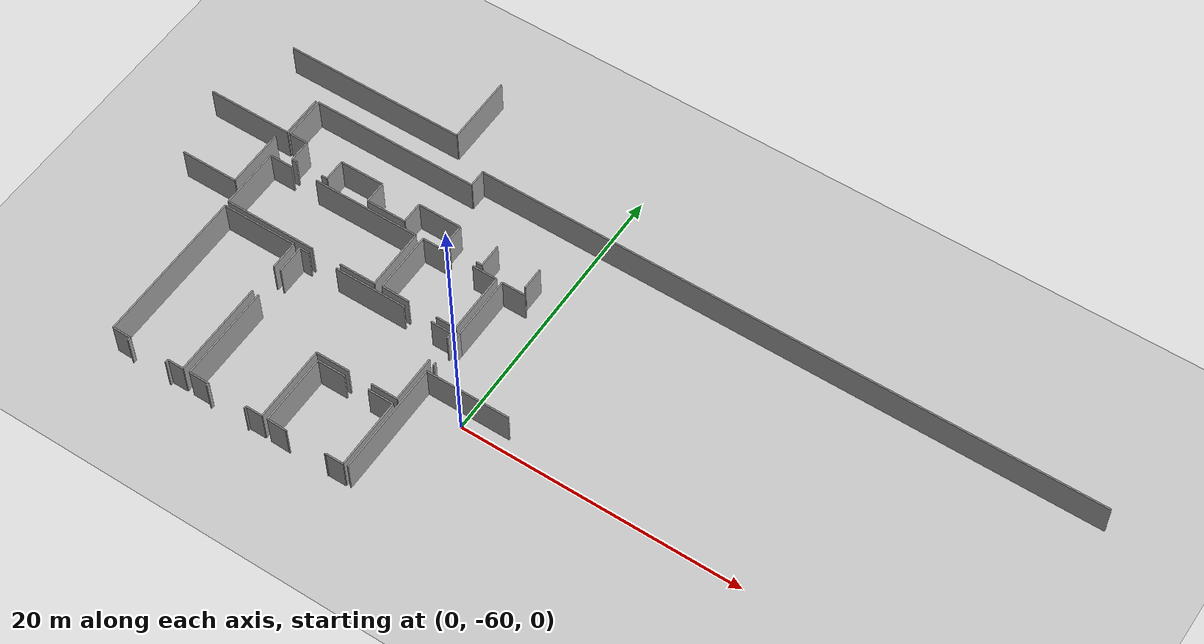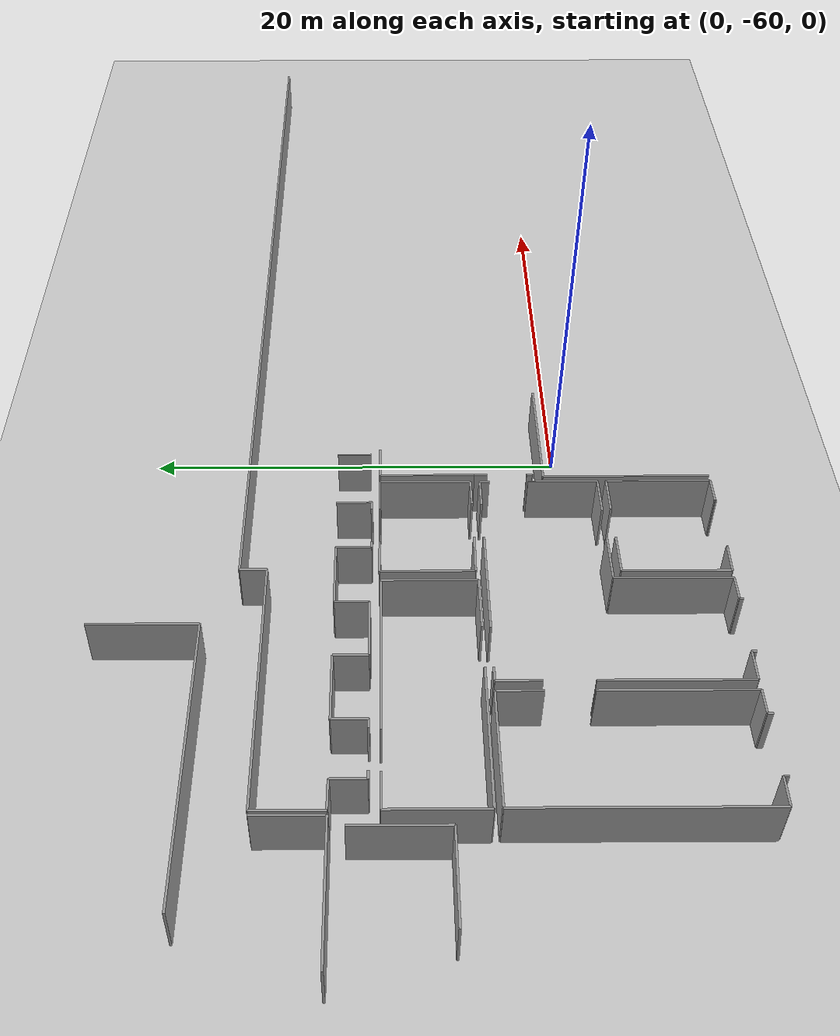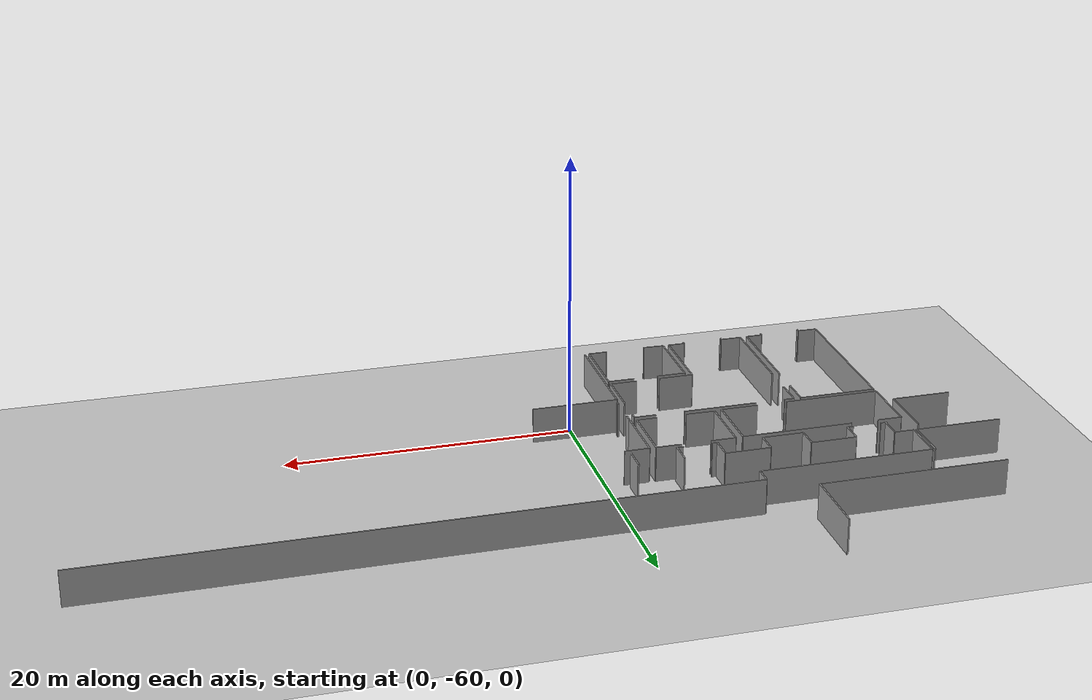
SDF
<sdf version="1.6">
 <world name="default">
  <model name="ground_plane">
   <static>1</static>
   <link name="link">
    <collision name="collision">
     <geometry><plane><normal>0 0 1</normal><size>100 100</size></plane></geometry>
     <surface><friction><ode><mu>100</mu><mu2>50</mu2></ode></friction></surface>
    </collision>
    <visual name="visual">
     <cast_shadows>0</cast_shadows>
     <geometry><plane><normal>0 0 1</normal><size>100 100</size></plane></geometry>
     <material>
      <script><uri>file://media/materials/scripts/gazebo.material</uri><name>Gazebo/Grey</name></script>
     </material>
    </visual>
   </link>
  </model>
  <model name="50036894">
   <static>1</static>
   <link name="Wall_186">
    <collision name="Wall_186_Collision">
     <geometry><box><size>3.04978792739 0.1 2.5</size></box></geometry>
     <pose>1.5248939637 0 1.25 0 0 0</pose>
    </collision>
    <visual name="Wall_186_Visual">
     <pose>1.5248939637 0 1.25 0 0 0</pose>
     <geometry><box><size>3.04978792739 0.1 2.5</size></box></geometry>
     <material>
      <script><uri>file://media/materials/scripts/gazebo.material</uri><name>Gazebo/Grey</name></script>
      <ambient>1 1 1 1</ambient>
     </material>
    </visual>
    <pose>101.698229241 -113.497961694 0 0 0 -1.57079632679</pose>
   </link>
   <link name="Wall_187">
    <collision name="Wall_187_Collision">
     <geometry><box><size>6.07801989488 0.1 2.5</size></box></geometry>
     <pose>3.03900994744 0 1.25 0 0 0</pose>
    </collision>
    <visual name="Wall_187_Visual">
     <pose>3.03900994744 0 1.25 0 0 0</pose>
     <geometry><box><size>6.07801989488 0.1 2.5</size></box></geometry>
     <material>
      <script><uri>file://media/materials/scripts/gazebo.material</uri><name>Gazebo/Grey</name></script>
      <ambient>1 1 1 1</ambient>
     </material>
    </visual>
    <pose>101.698229241 -116.547749621 0 0 0 3.14159265359</pose>
   </link>
   <link name="Wall_208">
    <collision name="Wall_208_Collision">
     <geometry><box><size>4.21938895194 0.1 2.5</size></box></geometry>
     <pose>2.10969447597 0 1.25 0 0 0</pose>
    </collision>
    <visual name="Wall_208_Visual">
     <pose>2.10969447597 0 1.25 0 0 0</pose>
     <geometry><box><size>4.21938895194 0.1 2.5</size></box></geometry>
     <material>
      <script><uri>file://media/materials/scripts/gazebo.material</uri><name>Gazebo/Grey</name></script>
      <ambient>1 1 1 1</ambient>
     </material>
    </visual>
    <pose>101.260516455 -117.229425153 0 0 0 -1.57079632679</pose>
   </link>
   <link name="Wall_209">
    <collision name="Wall_209_Collision">
     <geometry><box><size>4.1034939675 0.1 2.5</size></box></geometry>
     <pose>2.05174698375 0 1.25 0 0 0</pose>
    </collision>
    <visual name="Wall_209_Visual">
     <pose>2.05174698375 0 1.25 0 0 0</pose>
     <geometry><box><size>4.1034939675 0.1 2.5</size></box></geometry>
     <material>
      <script><uri>file://media/materials/scripts/gazebo.material</uri><name>Gazebo/Grey</name></script>
      <ambient>1 1 1 1</ambient>
     </material>
    </visual>
    <pose>101.260516455 -121.448814105 0 0 0 3.14159265359</pose>
   </link>
   <link name="Wall_223">
    <collision name="Wall_223_Collision">
     <geometry><box><size>4.986020326 0.1 2.5</size></box></geometry>
     <pose>2.493010163 0 1.25 0 0 0</pose>
    </collision>
    <visual name="Wall_223_Visual">
     <pose>2.493010163 0 1.25 0 0 0</pose>
     <geometry><box><size>4.986020326 0.1 2.5</size></box></geometry>
     <material>
      <script><uri>file://media/materials/scripts/gazebo.material</uri><name>Gazebo/Grey</name></script>
      <ambient>1 1 1 1</ambient>
     </material>
    </visual>
    <pose>110.900088126 -105.781181647 0 0 0 -1.57079632679</pose>
   </link>
   <link name="Wall_224">
    <collision name="Wall_224_Collision">
     <geometry><box><size>13.1202251964 0.1 2.5</size></box></geometry>
     <pose>6.56011259819 0 1.25 0 0 0</pose>
    </collision>
    <visual name="Wall_224_Visual">
     <pose>6.56011259819 0 1.25 0 0 0</pose>
     <geometry><box><size>13.1202251964 0.1 2.5</size></box></geometry>
     <material>
      <script><uri>file://media/materials/scripts/gazebo.material</uri><name>Gazebo/Grey</name></script>
      <ambient>1 1 1 1</ambient>
     </material>
    </visual>
    <pose>110.900088126 -110.767201973 0 0 0 3.14159265359</pose>
   </link>
   <link name="Wall_226">
    <collision name="Wall_226_Collision">
     <geometry><box><size>4.36470148166 0.1 2.5</size></box></geometry>
     <pose>2.18235074083 0 1.25 0 0 0</pose>
    </collision>
    <visual name="Wall_226_Visual">
     <pose>2.18235074083 0 1.25 0 0 0</pose>
     <geometry><box><size>4.36470148166 0.1 2.5</size></box></geometry>
     <material>
      <script><uri>file://media/materials/scripts/gazebo.material</uri><name>Gazebo/Grey</name></script>
      <ambient>1 1 1 1</ambient>
     </material>
    </visual>
    <pose>101.93001921 -122.974215268 0 0 0 1.57079632679</pose>
   </link>
   <link name="Wall_227">
    <collision name="Wall_227_Collision">
     <geometry><box><size>1.6826328703 0.1 2.5</size></box></geometry>
     <pose>0.841316435151 0 1.25 0 0 0</pose>
    </collision>
    <visual name="Wall_227_Visual">
     <pose>0.841316435151 0 1.25 0 0 0</pose>
     <geometry><box><size>1.6826328703 0.1 2.5</size></box></geometry>
     <material>
      <script><uri>file://media/materials/scripts/gazebo.material</uri><name>Gazebo/Grey</name></script>
      <ambient>1 1 1 1</ambient>
     </material>
    </visual>
    <pose>101.93001921 -118.609513786 0 0 0 0.0</pose>
   </link>
   <link name="Wall_228">
    <collision name="Wall_228_Collision">
     <geometry><box><size>7.76420315858 0.1 2.5</size></box></geometry>
     <pose>3.88210157929 0 1.25 0 0 0</pose>
    </collision>
    <visual name="Wall_228_Visual">
     <pose>3.88210157929 0 1.25 0 0 0</pose>
     <geometry><box><size>7.76420315858 0.1 2.5</size></box></geometry>
     <material>
      <script><uri>file://media/materials/scripts/gazebo.material</uri><name>Gazebo/Grey</name></script>
      <ambient>1 1 1 1</ambient>
     </material>
    </visual>
    <pose>105.530878913 -118.609513786 0 0 0 0.0</pose>
   </link>
   <link name="Wall_229">
    <collision name="Wall_229_Collision">
     <geometry><box><size>4.37636705996 0.1 2.5</size></box></geometry>
     <pose>2.18818352998 0 1.25 0 0 0</pose>
    </collision>
    <visual name="Wall_229_Visual">
     <pose>2.18818352998 0 1.25 0 0 0</pose>
     <geometry><box><size>4.37636705996 0.1 2.5</size></box></geometry>
     <material>
      <script><uri>file://media/materials/scripts/gazebo.material</uri><name>Gazebo/Grey</name></script>
      <ambient>1 1 1 1</ambient>
     </material>
    </visual>
    <pose>113.295082071 -118.609513786 0 0 0 -1.57079632679</pose>
   </link>
   <link name="Wall_230">
    <collision name="Wall_230_Collision">
     <geometry><box><size>2.60979274579 0.1 2.5</size></box></geometry>
     <pose>1.30489637289 0 1.25 0 0 0</pose>
    </collision>
    <visual name="Wall_230_Visual">
     <pose>1.30489637289 0 1.25 0 0 0</pose>
     <geometry><box><size>2.60979274579 0.1 2.5</size></box></geometry>
     <material>
      <script><uri>file://media/materials/scripts/gazebo.material</uri><name>Gazebo/Grey</name></script>
      <ambient>1 1 1 1</ambient>
     </material>
    </visual>
    <pose>113.295082071 -122.985880846 0 0 0 3.14159265359</pose>
   </link>
   <link name="Wall_231">
    <collision name="Wall_231_Collision">
     <geometry><box><size>6.62149396011 0.1 2.5</size></box></geometry>
     <pose>3.31074698005 0 1.25 0 0 0</pose>
    </collision>
    <visual name="Wall_231_Visual">
     <pose>3.31074698005 0 1.25 0 0 0</pose>
     <geometry><box><size>6.62149396011 0.1 2.5</size></box></geometry>
     <material>
      <script><uri>file://media/materials/scripts/gazebo.material</uri><name>Gazebo/Grey</name></script>
      <ambient>1 1 1 1</ambient>
     </material>
    </visual>
    <pose>108.551502894 -122.985880846 0 0 0 3.13983087832</pose>
   </link>
   <link name="Wall_232">
    <collision name="Wall_232_Collision">
     <geometry><box><size>6.75690583216 0.1 2.5</size></box></geometry>
     <pose>3.37845291608 0 1.25 0 0 0</pose>
    </collision>
    <visual name="Wall_232_Visual">
     <pose>3.37845291608 0 1.25 0 0 0</pose>
     <geometry><box><size>6.75690583216 0.1 2.5</size></box></geometry>
     <material>
      <script><uri>file://media/materials/scripts/gazebo.material</uri><name>Gazebo/Grey</name></script>
      <ambient>1 1 1 1</ambient>
     </material>
    </visual>
    <pose>107.872363357 -134.368188475 0 0 0 1.57079632679</pose>
   </link>
   <link name="Wall_233">
    <collision name="Wall_233_Collision">
     <geometry><box><size>2.02473863399 0.1 2.5</size></box></geometry>
     <pose>1.01236931699 0 1.25 0 0 0</pose>
    </collision>
    <visual name="Wall_233_Visual">
     <pose>1.01236931699 0 1.25 0 0 0</pose>
     <geometry><box><size>2.02473863399 0.1 2.5</size></box></geometry>
     <material>
      <script><uri>file://media/materials/scripts/gazebo.material</uri><name>Gazebo/Grey</name></script>
      <ambient>1 1 1 1</ambient>
     </material>
    </visual>
    <pose>107.872363357 -125.385185984 0 0 0 1.57079632679</pose>
   </link>
   <link name="Wall_234">
    <collision name="Wall_234_Collision">
     <geometry><box><size>0.690297916046 0.1 2.5</size></box></geometry>
     <pose>0.345148958023 0 1.25 0 0 0</pose>
    </collision>
    <visual name="Wall_234_Visual">
     <pose>0.345148958023 0 1.25 0 0 0</pose>
     <geometry><box><size>0.690297916046 0.1 2.5</size></box></geometry>
     <material>
      <script><uri>file://media/materials/scripts/gazebo.material</uri><name>Gazebo/Grey</name></script>
      <ambient>1 1 1 1</ambient>
     </material>
    </visual>
    <pose>107.872363357 -123.36044735 0 0 0 0.0</pose>
   </link>
   <link name="Wall_235">
    <collision name="Wall_235_Collision">
     <geometry><box><size>5.16937278497 0.1 2.5</size></box></geometry>
     <pose>2.58468639248 0 1.25 0 0 0</pose>
    </collision>
    <visual name="Wall_235_Visual">
     <pose>2.58468639248 0 1.25 0 0 0</pose>
     <geometry><box><size>5.16937278497 0.1 2.5</size></box></geometry>
     <material>
      <script><uri>file://media/materials/scripts/gazebo.material</uri><name>Gazebo/Grey</name></script>
      <ambient>1 1 1 1</ambient>
     </material>
    </visual>
    <pose>110.648010195 -123.36044735 0 0 0 0.0</pose>
   </link>
   <link name="Wall_236">
    <collision name="Wall_236_Collision">
     <geometry><box><size>1.5114531887 0.1 2.5</size></box></geometry>
     <pose>0.755726594349 0 1.25 0 0 0</pose>
    </collision>
    <visual name="Wall_236_Visual">
     <pose>0.755726594349 0 1.25 0 0 0</pose>
     <geometry><box><size>1.5114531887 0.1 2.5</size></box></geometry>
     <material>
      <script><uri>file://media/materials/scripts/gazebo.material</uri><name>Gazebo/Grey</name></script>
      <ambient>1 1 1 1</ambient>
     </material>
    </visual>
    <pose>117.873821555 -123.36044735 0 0 0 0.0</pose>
   </link>
   <link name="Wall_237">
    <collision name="Wall_237_Collision">
     <geometry><box><size>0.45622555142 0.1 2.5</size></box></geometry>
     <pose>0.22811277571 0 1.25 0 0 0</pose>
    </collision>
    <visual name="Wall_237_Visual">
     <pose>0.22811277571 0 1.25 0 0 0</pose>
     <geometry><box><size>0.45622555142 0.1 2.5</size></box></geometry>
     <material>
      <script><uri>file://media/materials/scripts/gazebo.material</uri><name>Gazebo/Grey</name></script>
      <ambient>1 1 1 1</ambient>
     </material>
    </visual>
    <pose>119.385274743 -123.36044735 0 0 0 -1.57079632679</pose>
   </link>
   <link name="Wall_238">
    <collision name="Wall_238_Collision">
     <geometry><box><size>3.3437097807 0.1 2.5</size></box></geometry>
     <pose>1.67185489035 0 1.25 0 0 0</pose>
    </collision>
    <visual name="Wall_238_Visual">
     <pose>1.67185489035 0 1.25 0 0 0</pose>
     <geometry><box><size>3.3437097807 0.1 2.5</size></box></geometry>
     <material>
      <script><uri>file://media/materials/scripts/gazebo.material</uri><name>Gazebo/Grey</name></script>
      <ambient>1 1 1 1</ambient>
     </material>
    </visual>
    <pose>119.385274743 -125.668203057 0 0 0 -1.57079632679</pose>
   </link>
   <link name="Wall_239">
    <collision name="Wall_239_Collision">
     <geometry><box><size>1.91214044342 0.1 2.5</size></box></geometry>
     <pose>0.956070221709 0 1.25 0 0 0</pose>
    </collision>
    <visual name="Wall_239_Visual">
     <pose>0.956070221709 0 1.25 0 0 0</pose>
     <geometry><box><size>1.91214044342 0.1 2.5</size></box></geometry>
     <material>
      <script><uri>file://media/materials/scripts/gazebo.material</uri><name>Gazebo/Grey</name></script>
      <ambient>1 1 1 1</ambient>
     </material>
    </visual>
    <pose>119.385274743 -129.011912838 0 0 0 3.14159265359</pose>
   </link>
   <link name="Wall_240">
    <collision name="Wall_240_Collision">
     <geometry><box><size>2.42162189578 0.1 2.5</size></box></geometry>
     <pose>1.21081094789 0 1.25 0 0 0</pose>
    </collision>
    <visual name="Wall_240_Visual">
     <pose>1.21081094789 0 1.25 0 0 0</pose>
     <geometry><box><size>2.42162189578 0.1 2.5</size></box></geometry>
     <material>
      <script><uri>file://media/materials/scripts/gazebo.material</uri><name>Gazebo/Grey</name></script>
      <ambient>1 1 1 1</ambient>
     </material>
    </visual>
    <pose>115.803688605 -129.011912838 0 0 0 3.14159265359</pose>
   </link>
   <link name="Wall_241">
    <collision name="Wall_241_Collision">
     <geometry><box><size>5.40243075148 0.1 2.5</size></box></geometry>
     <pose>2.70121537574 0 1.25 0 0 0</pose>
    </collision>
    <visual name="Wall_241_Visual">
     <pose>2.70121537574 0 1.25 0 0 0</pose>
     <geometry><box><size>5.40243075148 0.1 2.5</size></box></geometry>
     <material>
      <script><uri>file://media/materials/scripts/gazebo.material</uri><name>Gazebo/Grey</name></script>
      <ambient>1 1 1 1</ambient>
     </material>
    </visual>
    <pose>113.382066709 -129.011912838 0 0 0 -1.57079632679</pose>
   </link>
   <link name="Wall_242">
    <collision name="Wall_242_Collision">
     <geometry><box><size>1.19470737784 0.1 2.5</size></box></geometry>
     <pose>0.597353688922 0 1.25 0 0 0</pose>
    </collision>
    <visual name="Wall_242_Visual">
     <pose>0.597353688922 0 1.25 0 0 0</pose>
     <geometry><box><size>1.19470737784 0.1 2.5</size></box></geometry>
     <material>
      <script><uri>file://media/materials/scripts/gazebo.material</uri><name>Gazebo/Grey</name></script>
      <ambient>1 1 1 1</ambient>
     </material>
    </visual>
    <pose>113.382066709 -134.414343589 0 0 0 3.14159265359</pose>
   </link>
   <link name="Wall_243">
    <collision name="Wall_243_Collision">
     <geometry><box><size>0.183606058493 0.1 2.5</size></box></geometry>
     <pose>0.0918030292464 0 1.25 0 0 0</pose>
    </collision>
    <visual name="Wall_243_Visual">
     <pose>0.0918030292464 0 1.25 0 0 0</pose>
     <geometry><box><size>0.183606058493 0.1 2.5</size></box></geometry>
     <material>
      <script><uri>file://media/materials/scripts/gazebo.material</uri><name>Gazebo/Grey</name></script>
      <ambient>1 1 1 1</ambient>
     </material>
    </visual>
    <pose>112.187359332 -134.414343589 0 0 0 -1.57079632679</pose>
   </link>
   <link name="Wall_244">
    <collision name="Wall_244_Collision">
     <geometry><box><size>0.216827596701 0.1 2.5</size></box></geometry>
     <pose>0.10841379835 0 1.25 0 0 0</pose>
    </collision>
    <visual name="Wall_244_Visual">
     <pose>0.10841379835 0 1.25 0 0 0</pose>
     <geometry><box><size>0.216827596701 0.1 2.5</size></box></geometry>
     <material>
      <script><uri>file://media/materials/scripts/gazebo.material</uri><name>Gazebo/Grey</name></script>
      <ambient>1 1 1 1</ambient>
     </material>
    </visual>
    <pose>109.336139835 -134.597949648 0 0 0 1.57079632679</pose>
   </link>
   <link name="Wall_245">
    <collision name="Wall_245_Collision">
     <geometry><box><size>1.46383361524 0.1 2.5</size></box></geometry>
     <pose>0.73191680762 0 1.25 0 0 0</pose>
    </collision>
    <visual name="Wall_245_Visual">
     <pose>0.73191680762 0 1.25 0 0 0</pose>
     <geometry><box><size>1.46383361524 0.1 2.5</size></box></geometry>
     <material>
      <script><uri>file://media/materials/scripts/gazebo.material</uri><name>Gazebo/Grey</name></script>
      <ambient>1 1 1 1</ambient>
     </material>
    </visual>
    <pose>109.336139835 -134.381122051 0 0 0 3.13275712468</pose>
   </link>
   <link name="Wall_246">
    <collision name="Wall_246_Collision">
     <geometry><box><size>11.0480634506 0.1 2.5</size></box></geometry>
     <pose>5.5240317253 0 1.25 0 0 0</pose>
    </collision>
    <visual name="Wall_246_Visual">
     <pose>5.5240317253 0 1.25 0 0 0</pose>
     <geometry><box><size>11.0480634506 0.1 2.5</size></box></geometry>
     <material>
      <script><uri>file://media/materials/scripts/gazebo.material</uri><name>Gazebo/Grey</name></script>
      <ambient>1 1 1 1</ambient>
     </material>
    </visual>
    <pose>101.96755194 -134.379600454 0 0 0 1.57079632679</pose>
   </link>
   <link name="Wall_247">
    <collision name="Wall_247_Collision">
     <geometry><box><size>5.40243075148 0.1 2.5</size></box></geometry>
     <pose>2.70121537574 0 1.25 0 0 0</pose>
    </collision>
    <visual name="Wall_247_Visual">
     <pose>2.70121537574 0 1.25 0 0 0</pose>
     <geometry><box><size>5.40243075148 0.1 2.5</size></box></geometry>
     <material>
      <script><uri>file://media/materials/scripts/gazebo.material</uri><name>Gazebo/Grey</name></script>
      <ambient>1 1 1 1</ambient>
     </material>
    </visual>
    <pose>101.96755194 -123.331537003 0 0 0 0.0</pose>
   </link>
   <link name="Wall_248">
    <collision name="Wall_248_Collision">
     <geometry><box><size>2.07393694248 0.1 2.5</size></box></geometry>
     <pose>1.03696847124 0 1.25 0 0 0</pose>
    </collision>
    <visual name="Wall_248_Visual">
     <pose>1.03696847124 0 1.25 0 0 0</pose>
     <geometry><box><size>2.07393694248 0.1 2.5</size></box></geometry>
     <material>
      <script><uri>file://media/materials/scripts/gazebo.material</uri><name>Gazebo/Grey</name></script>
      <ambient>1 1 1 1</ambient>
     </material>
    </visual>
    <pose>107.369982692 -123.331537003 0 0 0 -1.57079632679</pose>
   </link>
   <link name="Wall_249">
    <collision name="Wall_249_Collision">
     <geometry><box><size>6.84921606046 0.1 2.5</size></box></geometry>
     <pose>3.42460803023 0 1.25 0 0 0</pose>
    </collision>
    <visual name="Wall_249_Visual">
     <pose>3.42460803023 0 1.25 0 0 0</pose>
     <geometry><box><size>6.84921606046 0.1 2.5</size></box></geometry>
     <material>
      <script><uri>file://media/materials/scripts/gazebo.material</uri><name>Gazebo/Grey</name></script>
      <ambient>1 1 1 1</ambient>
     </material>
    </visual>
    <pose>107.369982692 -127.533427588 0 0 0 -1.57079632679</pose>
   </link>
   <link name="Wall_250">
    <collision name="Wall_250_Collision">
     <geometry><box><size>1.15996424247 0.1 2.5</size></box></geometry>
     <pose>0.579982121233 0 1.25 0 0 0</pose>
    </collision>
    <visual name="Wall_250_Visual">
     <pose>0.579982121233 0 1.25 0 0 0</pose>
     <geometry><box><size>1.15996424247 0.1 2.5</size></box></geometry>
     <material>
      <script><uri>file://media/materials/scripts/gazebo.material</uri><name>Gazebo/Grey</name></script>
      <ambient>1 1 1 1</ambient>
     </material>
    </visual>
    <pose>107.369982692 -134.382643648 0 0 0 3.14159265359</pose>
   </link>
   <link name="Wall_251">
    <collision name="Wall_251_Collision">
     <geometry><box><size>0.252077931135 0.1 2.5</size></box></geometry>
     <pose>0.126038965568 0 1.25 0 0 0</pose>
    </collision>
    <visual name="Wall_251_Visual">
     <pose>0.126038965568 0 1.25 0 0 0</pose>
     <geometry><box><size>0.252077931135 0.1 2.5</size></box></geometry>
     <material>
      <script><uri>file://media/materials/scripts/gazebo.material</uri><name>Gazebo/Grey</name></script>
      <ambient>1 1 1 1</ambient>
     </material>
    </visual>
    <pose>106.210018449 -134.382643648 0 0 0 -1.57079632679</pose>
   </link>
   <link name="Wall_252">
    <collision name="Wall_252_Collision">
     <geometry><box><size>0.239651554248 0.1 2.5</size></box></geometry>
     <pose>0.119825777124 0 1.25 0 0 0</pose>
    </collision>
    <visual name="Wall_252_Visual">
     <pose>0.119825777124 0 1.25 0 0 0</pose>
     <geometry><box><size>0.239651554248 0.1 2.5</size></box></geometry>
     <material>
      <script><uri>file://media/materials/scripts/gazebo.material</uri><name>Gazebo/Grey</name></script>
      <ambient>1 1 1 1</ambient>
     </material>
    </visual>
    <pose>103.309854244 -134.634721579 0 0 0 1.57079632679</pose>
   </link>
   <link name="Wall_253">
    <collision name="Wall_253_Collision">
     <geometry><box><size>1.3423914411 0.1 2.5</size></box></geometry>
     <pose>0.671195720548 0 1.25 0 0 0</pose>
    </collision>
    <visual name="Wall_253_Visual">
     <pose>0.671195720548 0 1.25 0 0 0</pose>
     <geometry><box><size>1.3423914411 0.1 2.5</size></box></geometry>
     <material>
      <script><uri>file://media/materials/scripts/gazebo.material</uri><name>Gazebo/Grey</name></script>
      <ambient>1 1 1 1</ambient>
     </material>
    </visual>
    <pose>103.309854244 -134.395070025 0 0 0 3.13006850857</pose>
   </link>
   <link name="Wall_254">
    <collision name="Wall_254_Collision">
     <geometry><box><size>4.3104311826 0.1 2.5</size></box></geometry>
     <pose>2.1552155913 0 1.25 0 0 0</pose>
    </collision>
    <visual name="Wall_254_Visual">
     <pose>2.1552155913 0 1.25 0 0 0</pose>
     <geometry><box><size>4.3104311826 0.1 2.5</size></box></geometry>
     <material>
      <script><uri>file://media/materials/scripts/gazebo.material</uri><name>Gazebo/Grey</name></script>
      <ambient>1 1 1 1</ambient>
     </material>
    </visual>
    <pose>113.821554692 -122.875565051 0 0 0 1.57079632679</pose>
   </link>
   <link name="Wall_255">
    <collision name="Wall_255_Collision">
     <geometry><box><size>1.73487437313 0.1 2.5</size></box></geometry>
     <pose>0.867437186567 0 1.25 0 0 0</pose>
    </collision>
    <visual name="Wall_255_Visual">
     <pose>0.867437186567 0 1.25 0 0 0</pose>
     <geometry><box><size>1.73487437313 0.1 2.5</size></box></geometry>
     <material>
      <script><uri>file://media/materials/scripts/gazebo.material</uri><name>Gazebo/Grey</name></script>
      <ambient>1 1 1 1</ambient>
     </material>
    </visual>
    <pose>113.821554692 -118.565133869 0 0 0 0.0</pose>
   </link>
   <link name="Wall_256">
    <collision name="Wall_256_Collision">
     <geometry><box><size>1.76758871228 0.1 2.5</size></box></geometry>
     <pose>0.883794356142 0 1.25 0 0 0</pose>
    </collision>
    <visual name="Wall_256_Visual">
     <pose>0.883794356142 0 1.25 0 0 0</pose>
     <geometry><box><size>1.76758871228 0.1 2.5</size></box></geometry>
     <material>
      <script><uri>file://media/materials/scripts/gazebo.material</uri><name>Gazebo/Grey</name></script>
      <ambient>1 1 1 1</ambient>
     </material>
    </visual>
    <pose>117.60754205 -118.565133869 0 0 0 0.0</pose>
   </link>
   <link name="Wall_257">
    <collision name="Wall_257_Collision">
     <geometry><box><size>4.34644231562 0.1 2.5</size></box></geometry>
     <pose>2.17322115781 0 1.25 0 0 0</pose>
    </collision>
    <visual name="Wall_257_Visual">
     <pose>2.17322115781 0 1.25 0 0 0</pose>
     <geometry><box><size>4.34644231562 0.1 2.5</size></box></geometry>
     <material>
      <script><uri>file://media/materials/scripts/gazebo.material</uri><name>Gazebo/Grey</name></script>
      <ambient>1 1 1 1</ambient>
     </material>
    </visual>
    <pose>119.375130762 -118.565133869 0 0 0 -1.57079632679</pose>
   </link>
   <link name="Wall_258">
    <collision name="Wall_258_Collision">
     <geometry><box><size>1.44551731134 0.1 2.5</size></box></geometry>
     <pose>0.722758655669 0 1.25 0 0 0</pose>
    </collision>
    <visual name="Wall_258_Visual">
     <pose>0.722758655669 0 1.25 0 0 0</pose>
     <geometry><box><size>1.44551731134 0.1 2.5</size></box></geometry>
     <material>
      <script><uri>file://media/materials/scripts/gazebo.material</uri><name>Gazebo/Grey</name></script>
      <ambient>1 1 1 1</ambient>
     </material>
    </visual>
    <pose>119.375130762 -122.911576184 0 0 0 3.14159265359</pose>
   </link>
   <link name="Wall_259">
    <collision name="Wall_259_Collision">
     <geometry><box><size>2.01795918792 0.1 2.5</size></box></geometry>
     <pose>1.00897959396 0 1.25 0 0 0</pose>
    </collision>
    <visual name="Wall_259_Visual">
     <pose>1.00897959396 0 1.25 0 0 0</pose>
     <geometry><box><size>2.01795918792 0.1 2.5</size></box></geometry>
     <material>
      <script><uri>file://media/materials/scripts/gazebo.material</uri><name>Gazebo/Grey</name></script>
      <ambient>1 1 1 1</ambient>
     </material>
    </visual>
    <pose>115.839192539 -122.911576184 0 0 0 3.12374638354</pose>
   </link>
   <link name="Wall_260">
    <collision name="Wall_260_Collision">
     <geometry><box><size>4.99109231657 0.1 2.5</size></box></geometry>
     <pose>2.49554615828 0 1.25 0 0 0</pose>
    </collision>
    <visual name="Wall_260_Visual">
     <pose>2.49554615828 0 1.25 0 0 0</pose>
     <geometry><box><size>4.99109231657 0.1 2.5</size></box></geometry>
     <material>
      <script><uri>file://media/materials/scripts/gazebo.material</uri><name>Gazebo/Grey</name></script>
      <ambient>1 1 1 1</ambient>
     </material>
    </visual>
    <pose>113.802281128 -134.418654781 0 0 0 1.57079632679</pose>
   </link>
   <link name="Wall_261">
    <collision name="Wall_261_Collision">
     <geometry><box><size>2.00267547502 0.1 2.5</size></box></geometry>
     <pose>1.00133773751 0 1.25 0 0 0</pose>
    </collision>
    <visual name="Wall_261_Visual">
     <pose>1.00133773751 0 1.25 0 0 0</pose>
     <geometry><box><size>2.00267547502 0.1 2.5</size></box></geometry>
     <material>
      <script><uri>file://media/materials/scripts/gazebo.material</uri><name>Gazebo/Grey</name></script>
      <ambient>1 1 1 1</ambient>
     </material>
    </visual>
    <pose>113.802281128 -129.427562465 0 0 0 0.0</pose>
   </link>
   <link name="Wall_262">
    <collision name="Wall_262_Collision">
     <geometry><box><size>1.85508054955 0.1 2.5</size></box></geometry>
     <pose>0.927540274775 0 1.25 0 0 0</pose>
    </collision>
    <visual name="Wall_262_Visual">
     <pose>0.927540274775 0 1.25 0 0 0</pose>
     <geometry><box><size>1.85508054955 0.1 2.5</size></box></geometry>
     <material>
      <script><uri>file://media/materials/scripts/gazebo.material</uri><name>Gazebo/Grey</name></script>
      <ambient>1 1 1 1</ambient>
     </material>
    </visual>
    <pose>117.558090142 -129.427562465 0 0 0 0.0</pose>
   </link>
   <link name="Wall_263">
    <collision name="Wall_263_Collision">
     <geometry><box><size>5.00351869346 0.1 2.5</size></box></geometry>
     <pose>2.50175934673 0 1.25 0 0 0</pose>
    </collision>
    <visual name="Wall_263_Visual">
     <pose>2.50175934673 0 1.25 0 0 0</pose>
     <geometry><box><size>5.00351869346 0.1 2.5</size></box></geometry>
     <material>
      <script><uri>file://media/materials/scripts/gazebo.material</uri><name>Gazebo/Grey</name></script>
      <ambient>1 1 1 1</ambient>
     </material>
    </visual>
    <pose>119.413170692 -129.427562465 0 0 0 -1.57079632679</pose>
   </link>
   <link name="Wall_264">
    <collision name="Wall_264_Collision">
     <geometry><box><size>1.29842958492 0.1 2.5</size></box></geometry>
     <pose>0.64921479246 0 1.25 0 0 0</pose>
    </collision>
    <visual name="Wall_264_Visual">
     <pose>0.64921479246 0 1.25 0 0 0</pose>
     <geometry><box><size>1.29842958492 0.1 2.5</size></box></geometry>
     <material>
      <script><uri>file://media/materials/scripts/gazebo.material</uri><name>Gazebo/Grey</name></script>
      <ambient>1 1 1 1</ambient>
     </material>
    </visual>
    <pose>119.413170692 -134.431081158 0 0 0 3.14159265359</pose>
   </link>
   <link name="Wall_265">
    <collision name="Wall_265_Collision">
     <geometry><box><size>0.0710078679253 0.1 2.5</size></box></geometry>
     <pose>0.0355039339627 0 1.25 0 0 0</pose>
    </collision>
    <visual name="Wall_265_Visual">
     <pose>0.0355039339627 0 1.25 0 0 0</pose>
     <geometry><box><size>0.0710078679253 0.1 2.5</size></box></geometry>
     <material>
      <script><uri>file://media/materials/scripts/gazebo.material</uri><name>Gazebo/Grey</name></script>
      <ambient>1 1 1 1</ambient>
     </material>
    </visual>
    <pose>118.114741107 -134.431081158 0 0 0 -1.57079632679</pose>
   </link>
   <link name="Wall_266">
    <collision name="Wall_266_Collision">
     <geometry><box><size>0.0497055075477 0.1 2.5</size></box></geometry>
     <pose>0.0248527537739 0 1.25 0 0 0</pose>
    </collision>
    <visual name="Wall_266_Visual">
     <pose>0.0248527537739 0 1.25 0 0 0</pose>
     <geometry><box><size>0.0497055075477 0.1 2.5</size></box></geometry>
     <material>
      <script><uri>file://media/materials/scripts/gazebo.material</uri><name>Gazebo/Grey</name></script>
      <ambient>1 1 1 1</ambient>
     </material>
    </visual>
    <pose>115.229539273 -134.502089026 0 0 0 1.57079632679</pose>
   </link>
   <link name="Wall_267">
    <collision name="Wall_267_Collision">
     <geometry><box><size>1.42765662575 0.1 2.5</size></box></geometry>
     <pose>0.713828312874 0 1.25 0 0 0</pose>
    </collision>
    <visual name="Wall_267_Visual">
     <pose>0.713828312874 0 1.25 0 0 0</pose>
     <geometry><box><size>1.42765662575 0.1 2.5</size></box></geometry>
     <material>
      <script><uri>file://media/materials/scripts/gazebo.material</uri><name>Gazebo/Grey</name></script>
      <ambient>1 1 1 1</ambient>
     </material>
    </visual>
    <pose>115.229539273 -134.452383519 0 0 0 3.1179652105</pose>
   </link>
   <link name="Wall_268">
    <collision name="Wall_268_Collision">
     <geometry><box><size>4.5353739642 0.1 2.5</size></box></geometry>
     <pose>2.2676869821 0 1.25 0 0 0</pose>
    </collision>
    <visual name="Wall_268_Visual">
     <pose>2.2676869821 0 1.25 0 0 0</pose>
     <geometry><box><size>4.5353739642 0.1 2.5</size></box></geometry>
     <material>
      <script><uri>file://media/materials/scripts/gazebo.material</uri><name>Gazebo/Grey</name></script>
      <ambient>1 1 1 1</ambient>
     </material>
    </visual>
    <pose>119.826537923 -123.122317392 0 0 0 1.57079632679</pose>
   </link>
   <link name="Wall_269">
    <collision name="Wall_269_Collision">
     <geometry><box><size>1.72701278776 0.1 2.5</size></box></geometry>
     <pose>0.863506393878 0 1.25 0 0 0</pose>
    </collision>
    <visual name="Wall_269_Visual">
     <pose>0.863506393878 0 1.25 0 0 0</pose>
     <geometry><box><size>1.72701278776 0.1 2.5</size></box></geometry>
     <material>
      <script><uri>file://media/materials/scripts/gazebo.material</uri><name>Gazebo/Grey</name></script>
      <ambient>1 1 1 1</ambient>
     </material>
    </visual>
    <pose>119.826537923 -118.586943428 0 0 0 0.0</pose>
   </link>
   <link name="Wall_274">
    <collision name="Wall_274_Collision">
     <geometry><box><size>0.050719905661 0.1 2.5</size></box></geometry>
     <pose>0.0253599528305 0 1.25 0 0 0</pose>
    </collision>
    <visual name="Wall_274_Visual">
     <pose>0.0253599528305 0 1.25 0 0 0</pose>
     <geometry><box><size>0.050719905661 0.1 2.5</size></box></geometry>
     <material>
      <script><uri>file://media/materials/scripts/gazebo.material</uri><name>Gazebo/Grey</name></script>
      <ambient>1 1 1 1</ambient>
     </material>
    </visual>
    <pose>119.874721833 -125.910390607 0 0 0 3.14159265359</pose>
   </link>
   <link name="Wall_275">
    <collision name="Wall_275_Collision">
     <geometry><box><size>0.266786703777 0.1 2.5</size></box></geometry>
     <pose>0.133393351888 0 1.25 0 0 0</pose>
    </collision>
    <visual name="Wall_275_Visual">
     <pose>0.133393351888 0 1.25 0 0 0</pose>
     <geometry><box><size>0.266786703777 0.1 2.5</size></box></geometry>
     <material>
      <script><uri>file://media/materials/scripts/gazebo.material</uri><name>Gazebo/Grey</name></script>
      <ambient>1 1 1 1</ambient>
     </material>
    </visual>
    <pose>119.824001927 -125.910390607 0 0 0 1.57079632679</pose>
   </link>
   <link name="Wall_276">
    <collision name="Wall_276_Collision">
     <geometry><box><size>0.617520058783 0.1 2.5</size></box></geometry>
     <pose>0.308760029391 0 1.25 0 0 0</pose>
    </collision>
    <visual name="Wall_276_Visual">
     <pose>0.308760029391 0 1.25 0 0 0</pose>
     <geometry><box><size>0.617520058783 0.1 2.5</size></box></geometry>
     <material>
      <script><uri>file://media/materials/scripts/gazebo.material</uri><name>Gazebo/Grey</name></script>
      <ambient>1 1 1 1</ambient>
     </material>
    </visual>
    <pose>119.824001927 -123.739832244 0 0 0 1.5666895737</pose>
   </link>
   <link name="Wall_277">
    <collision name="Wall_277_Collision">
     <geometry><box><size>7.98711714396 0.1 2.5</size></box></geometry>
     <pose>3.99355857198 0 1.25 0 0 0</pose>
    </collision>
    <visual name="Wall_277_Visual">
     <pose>3.99355857198 0 1.25 0 0 0</pose>
     <geometry><box><size>7.98711714396 0.1 2.5</size></box></geometry>
     <material>
      <script><uri>file://media/materials/scripts/gazebo.material</uri><name>Gazebo/Grey</name></script>
      <ambient>1 1 1 1</ambient>
     </material>
    </visual>
    <pose>119.725098111 -134.414343589 0 0 0 1.57079632679</pose>
   </link>
   <link name="Wall_278">
    <collision name="Wall_278_Collision">
     <geometry><box><size>5.984948868 0.1 2.5</size></box></geometry>
     <pose>2.992474434 0 1.25 0 0 0</pose>
    </collision>
    <visual name="Wall_278_Visual">
     <pose>2.992474434 0 1.25 0 0 0</pose>
     <geometry><box><size>5.984948868 0.1 2.5</size></box></geometry>
     <material>
      <script><uri>file://media/materials/scripts/gazebo.material</uri><name>Gazebo/Grey</name></script>
      <ambient>1 1 1 1</ambient>
     </material>
    </visual>
    <pose>119.725098111 -126.427226445 0 0 0 0.0</pose>
   </link>
   <link name="Wall_318">
    <collision name="Wall_318_Collision">
     <geometry><box><size>3.04496953636 0.1 2.5</size></box></geometry>
     <pose>1.52248476818 0 1.25 0 0 0</pose>
    </collision>
    <visual name="Wall_318_Visual">
     <pose>1.52248476818 0 1.25 0 0 0</pose>
     <geometry><box><size>3.04496953636 0.1 2.5</size></box></geometry>
     <material>
      <script><uri>file://media/materials/scripts/gazebo.material</uri><name>Gazebo/Grey</name></script>
      <ambient>1 1 1 1</ambient>
     </material>
    </visual>
    <pose>101.904659257 -116.532787249 0 0 0 1.57079632679</pose>
   </link>
   <link name="Wall_319">
    <collision name="Wall_319_Collision">
     <geometry><box><size>12.0502887865 0.1 2.5</size></box></geometry>
     <pose>6.02514439323 0 1.25 0 0 0</pose>
    </collision>
    <visual name="Wall_319_Visual">
     <pose>6.02514439323 0 1.25 0 0 0</pose>
     <geometry><box><size>12.0502887865 0.1 2.5</size></box></geometry>
     <material>
      <script><uri>file://media/materials/scripts/gazebo.material</uri><name>Gazebo/Grey</name></script>
      <ambient>1 1 1 1</ambient>
     </material>
    </visual>
    <pose>101.904659257 -113.487817713 0 0 0 0.0</pose>
   </link>
   <link name="Wall_320">
    <collision name="Wall_320_Collision">
     <geometry><box><size>1.2337617052 0.1 2.5</size></box></geometry>
     <pose>0.616880852602 0 1.25 0 0 0</pose>
    </collision>
    <visual name="Wall_320_Visual">
     <pose>0.616880852602 0 1.25 0 0 0</pose>
     <geometry><box><size>1.2337617052 0.1 2.5</size></box></geometry>
     <material>
      <script><uri>file://media/materials/scripts/gazebo.material</uri><name>Gazebo/Grey</name></script>
      <ambient>1 1 1 1</ambient>
     </material>
    </visual>
    <pose>113.954948044 -113.487817713 0 0 0 1.57079632679</pose>
   </link>
   <link name="Wall_321">
    <collision name="Wall_321_Collision">
     <geometry><box><size>44.6038458368 0.1 2.5</size></box></geometry>
     <pose>22.3019229184 0 1.25 0 0 0</pose>
    </collision>
    <visual name="Wall_321_Visual">
     <pose>22.3019229184 0 1.25 0 0 0</pose>
     <geometry><box><size>44.6038458368 0.1 2.5</size></box></geometry>
     <material>
      <script><uri>file://media/materials/scripts/gazebo.material</uri><name>Gazebo/Grey</name></script>
      <ambient>1 1 1 1</ambient>
     </material>
    </visual>
    <pose>113.954948044 -112.254056007 0 0 0 0.0</pose>
   </link>
   <link name="Wall_354">
    <collision name="Wall_354_Collision">
     <geometry><box><size>1.61086420379 0.1 2.5</size></box></geometry>
     <pose>0.805432101896 0 1.25 0 0 0</pose>
    </collision>
    <visual name="Wall_354_Visual">
     <pose>0.805432101896 0 1.25 0 0 0</pose>
     <geometry><box><size>1.61086420379 0.1 2.5</size></box></geometry>
     <material>
      <script><uri>file://media/materials/scripts/gazebo.material</uri><name>Gazebo/Grey</name></script>
      <ambient>1 1 1 1</ambient>
     </material>
    </visual>
    <pose>121.226407319 -118.136804266 0 0 0 1.57079632679</pose>
   </link>
   <link name="Wall_356">
    <collision name="Wall_356_Collision">
     <geometry><box><size>1.66843129672 0.1 2.5</size></box></geometry>
     <pose>0.834215648359 0 1.25 0 0 0</pose>
    </collision>
    <visual name="Wall_356_Visual">
     <pose>0.834215648359 0 1.25 0 0 0</pose>
     <geometry><box><size>1.66843129672 0.1 2.5</size></box></geometry>
     <material>
      <script><uri>file://media/materials/scripts/gazebo.material</uri><name>Gazebo/Grey</name></script>
      <ambient>1 1 1 1</ambient>
     </material>
    </visual>
    <pose>118.043733239 -116.525940062 0 0 0 -1.57079632679</pose>
   </link>
   <link name="Wall_357">
    <collision name="Wall_357_Collision">
     <geometry><box><size>0.44126317925 0.1 2.5</size></box></geometry>
     <pose>0.220631589625 0 1.25 0 0 0</pose>
    </collision>
    <visual name="Wall_357_Visual">
     <pose>0.220631589625 0 1.25 0 0 0</pose>
     <geometry><box><size>0.44126317925 0.1 2.5</size></box></geometry>
     <material>
      <script><uri>file://media/materials/scripts/gazebo.material</uri><name>Gazebo/Grey</name></script>
      <ambient>1 1 1 1</ambient>
     </material>
    </visual>
    <pose>118.043733239 -118.194371358 0 0 0 3.14159265359</pose>
   </link>
   <link name="Wall_358">
    <collision name="Wall_358_Collision">
     <geometry><box><size>0.350728147646 0.1 2.5</size></box></geometry>
     <pose>0.175364073823 0 1.25 0 0 0</pose>
    </collision>
    <visual name="Wall_358_Visual">
     <pose>0.175364073823 0 1.25 0 0 0</pose>
     <geometry><box><size>0.350728147646 0.1 2.5</size></box></geometry>
     <material>
      <script><uri>file://media/materials/scripts/gazebo.material</uri><name>Gazebo/Grey</name></script>
      <ambient>1 1 1 1</ambient>
     </material>
    </visual>
    <pose>115.589397004 -118.194371358 0 0 0 3.14159265359</pose>
   </link>
   <link name="Wall_359">
    <collision name="Wall_359_Collision">
     <geometry><box><size>1.63571695757 0.1 2.5</size></box></geometry>
     <pose>0.817858478783 0 1.25 0 0 0</pose>
    </collision>
    <visual name="Wall_359_Visual">
     <pose>0.817858478783 0 1.25 0 0 0</pose>
     <geometry><box><size>1.63571695757 0.1 2.5</size></box></geometry>
     <material>
      <script><uri>file://media/materials/scripts/gazebo.material</uri><name>Gazebo/Grey</name></script>
      <ambient>1 1 1 1</ambient>
     </material>
    </visual>
    <pose>115.238668856 -118.194371358 0 0 0 1.57079632679</pose>
   </link>
   <link name="Wall_360">
    <collision name="Wall_360_Collision">
     <geometry><box><size>3.15756772692 0.1 2.5</size></box></geometry>
     <pose>1.57878386346 0 1.25 0 0 0</pose>
    </collision>
    <visual name="Wall_360_Visual">
     <pose>1.57878386346 0 1.25 0 0 0</pose>
     <geometry><box><size>3.15756772692 0.1 2.5</size></box></geometry>
     <material>
      <script><uri>file://media/materials/scripts/gazebo.material</uri><name>Gazebo/Grey</name></script>
      <ambient>1 1 1 1</ambient>
     </material>
    </visual>
    <pose>115.238668856 -116.558654401 0 0 0 3.14159265359</pose>
   </link>
   <link name="Wall_361">
    <collision name="Wall_361_Collision">
     <geometry><box><size>1.55684750426 0.1 2.5</size></box></geometry>
     <pose>0.778423752132 0 1.25 0 0 0</pose>
    </collision>
    <visual name="Wall_361_Visual">
     <pose>0.778423752132 0 1.25 0 0 0</pose>
     <geometry><box><size>1.55684750426 0.1 2.5</size></box></geometry>
     <material>
      <script><uri>file://media/materials/scripts/gazebo.material</uri><name>Gazebo/Grey</name></script>
      <ambient>1 1 1 1</ambient>
     </material>
    </visual>
    <pose>112.081101129 -116.558654401 0 0 0 -1.57079632679</pose>
   </link>
   <link name="Wall_362">
    <collision name="Wall_362_Collision">
     <geometry><box><size>2.87252185711 0.1 2.5</size></box></geometry>
     <pose>1.43626092855 0 1.25 0 0 0</pose>
    </collision>
    <visual name="Wall_362_Visual">
     <pose>1.43626092855 0 1.25 0 0 0</pose>
     <geometry><box><size>2.87252185711 0.1 2.5</size></box></geometry>
     <material>
      <script><uri>file://media/materials/scripts/gazebo.material</uri><name>Gazebo/Grey</name></script>
      <ambient>1 1 1 1</ambient>
     </material>
    </visual>
    <pose>112.081101129 -118.115501905 0 0 0 3.14159265359</pose>
   </link>
   <link name="Wall_363">
    <collision name="Wall_363_Collision">
     <geometry><box><size>1.56775228398 0.1 2.5</size></box></geometry>
     <pose>0.78387614199 0 1.25 0 0 0</pose>
    </collision>
    <visual name="Wall_363_Visual">
     <pose>0.78387614199 0 1.25 0 0 0</pose>
     <geometry><box><size>1.56775228398 0.1 2.5</size></box></geometry>
     <material>
      <script><uri>file://media/materials/scripts/gazebo.material</uri><name>Gazebo/Grey</name></script>
      <ambient>1 1 1 1</ambient>
     </material>
    </visual>
    <pose>109.208579272 -118.115501905 0 0 0 1.57079632679</pose>
   </link>
   <link name="Wall_364">
    <collision name="Wall_364_Collision">
     <geometry><box><size>3.17963088589 0.1 2.5</size></box></geometry>
     <pose>1.58981544294 0 1.25 0 0 0</pose>
    </collision>
    <visual name="Wall_364_Visual">
     <pose>1.58981544294 0 1.25 0 0 0</pose>
     <geometry><box><size>3.17963088589 0.1 2.5</size></box></geometry>
     <material>
      <script><uri>file://media/materials/scripts/gazebo.material</uri><name>Gazebo/Grey</name></script>
      <ambient>1 1 1 1</ambient>
     </material>
    </visual>
    <pose>109.208579272 -116.547749621 0 0 0 3.14159265359</pose>
   </link>
   <link name="Wall_365">
    <collision name="Wall_365_Collision">
     <geometry><box><size>1.56775228398 0.1 2.5</size></box></geometry>
     <pose>0.78387614199 0 1.25 0 0 0</pose>
    </collision>
    <visual name="Wall_365_Visual">
     <pose>0.78387614199 0 1.25 0 0 0</pose>
     <geometry><box><size>1.56775228398 0.1 2.5</size></box></geometry>
     <material>
      <script><uri>file://media/materials/scripts/gazebo.material</uri><name>Gazebo/Grey</name></script>
      <ambient>1 1 1 1</ambient>
     </material>
    </visual>
    <pose>106.028948386 -116.547749621 0 0 0 -1.57079632679</pose>
   </link>
   <link name="Wall_366">
    <collision name="Wall_366_Collision">
     <geometry><box><size>0.427568804722 0.1 2.5</size></box></geometry>
     <pose>0.213784402361 0 1.25 0 0 0</pose>
    </collision>
    <visual name="Wall_366_Visual">
     <pose>0.213784402361 0 1.25 0 0 0</pose>
     <geometry><box><size>0.427568804722 0.1 2.5</size></box></geometry>
     <material>
      <script><uri>file://media/materials/scripts/gazebo.material</uri><name>Gazebo/Grey</name></script>
      <ambient>1 1 1 1</ambient>
     </material>
    </visual>
    <pose>106.028948386 -118.115501905 0 0 0 3.14159265359</pose>
   </link>
   <link name="Wall_367">
    <collision name="Wall_367_Collision">
     <geometry><box><size>0.362393725948 0.1 2.5</size></box></geometry>
     <pose>0.181196862974 0 1.25 0 0 0</pose>
    </collision>
    <visual name="Wall_367_Visual">
     <pose>0.181196862974 0 1.25 0 0 0</pose>
     <geometry><box><size>0.362393725948 0.1 2.5</size></box></geometry>
     <material>
      <script><uri>file://media/materials/scripts/gazebo.material</uri><name>Gazebo/Grey</name></script>
      <ambient>1 1 1 1</ambient>
     </material>
    </visual>
    <pose>103.62381046 -118.115501905 0 0 0 3.14159265359</pose>
   </link>
   <link name="Wall_368">
    <collision name="Wall_368_Collision">
     <geometry><box><size>1.56749868445 0.1 2.5</size></box></geometry>
     <pose>0.783749342226 0 1.25 0 0 0</pose>
    </collision>
    <visual name="Wall_368_Visual">
     <pose>0.783749342226 0 1.25 0 0 0</pose>
     <geometry><box><size>1.56749868445 0.1 2.5</size></box></geometry>
     <material>
      <script><uri>file://media/materials/scripts/gazebo.material</uri><name>Gazebo/Grey</name></script>
      <ambient>1 1 1 1</ambient>
     </material>
    </visual>
    <pose>103.261416734 -118.115501905 0 0 0 1.57079632679</pose>
   </link>
   <link name="Wall_369">
    <collision name="Wall_369_Collision">
     <geometry><box><size>1.35684279695 0.1 2.5</size></box></geometry>
     <pose>0.678421398477 0 1.25 0 0 0</pose>
    </collision>
    <visual name="Wall_369_Visual">
     <pose>0.678421398477 0 1.25 0 0 0</pose>
     <geometry><box><size>1.35684279695 0.1 2.5</size></box></geometry>
     <material>
      <script><uri>file://media/materials/scripts/gazebo.material</uri><name>Gazebo/Grey</name></script>
      <ambient>1 1 1 1</ambient>
     </material>
    </visual>
    <pose>103.261416734 -116.548003221 0 0 0 3.13037817047</pose>
   </link>
   <pose>-122.8 67.3347215794 0 0 0 0</pose>
  </model>
 </world>
</sdf>
